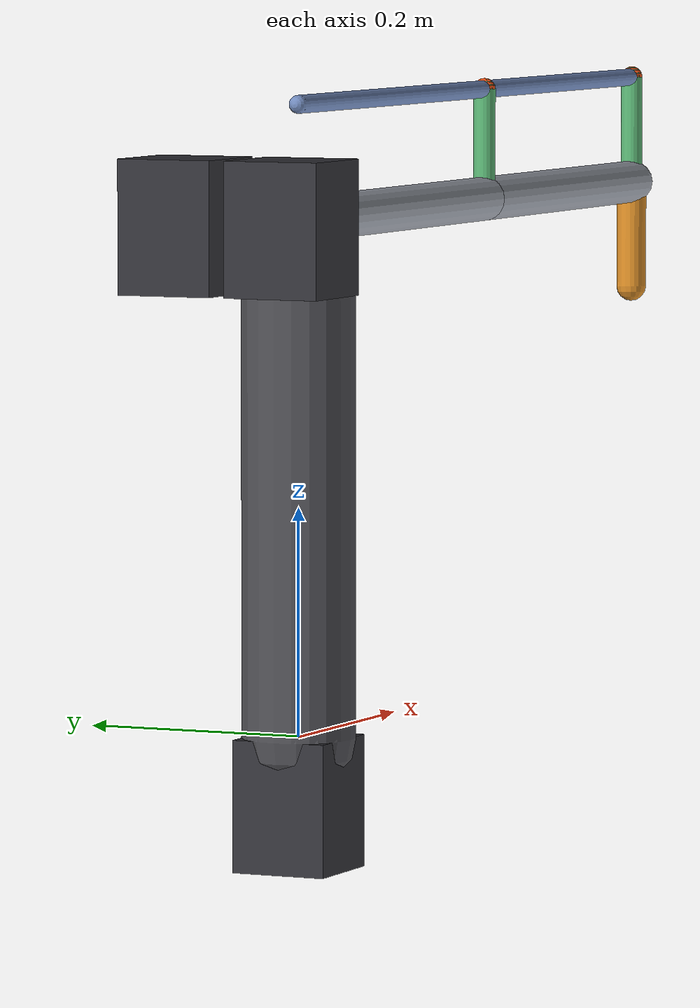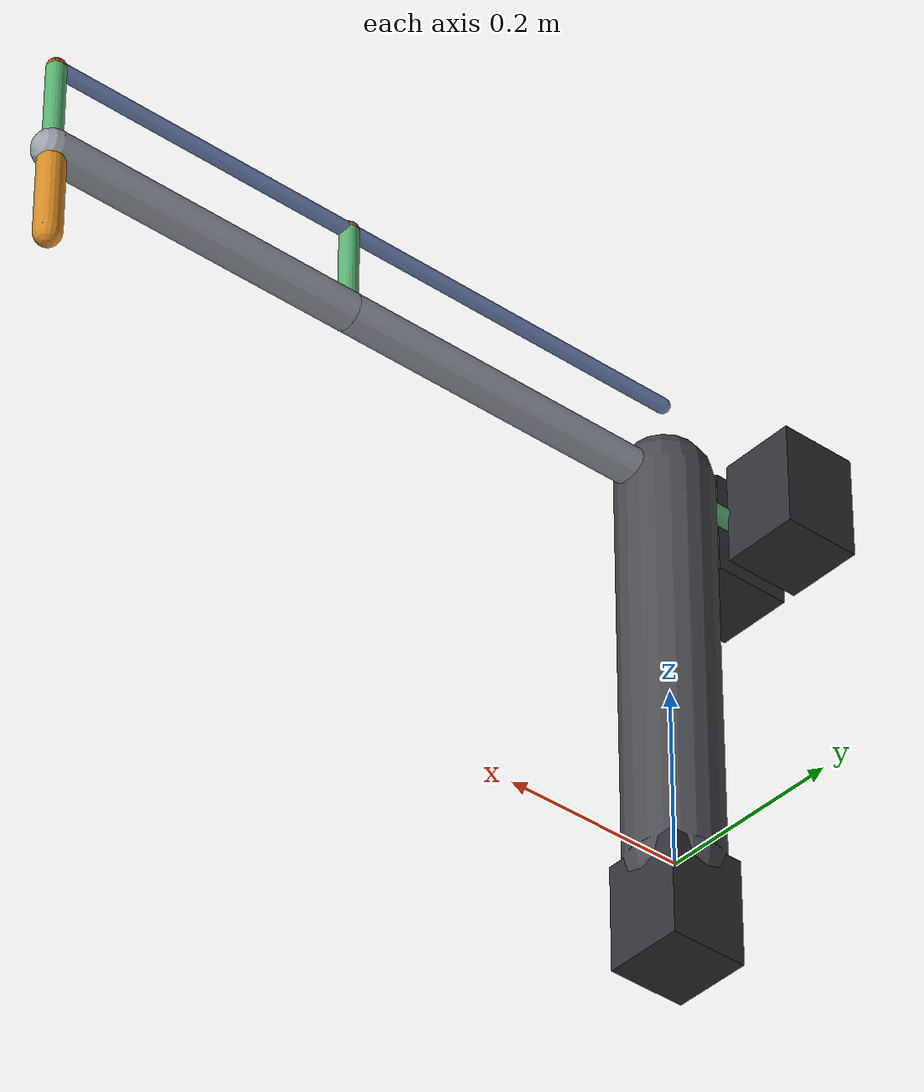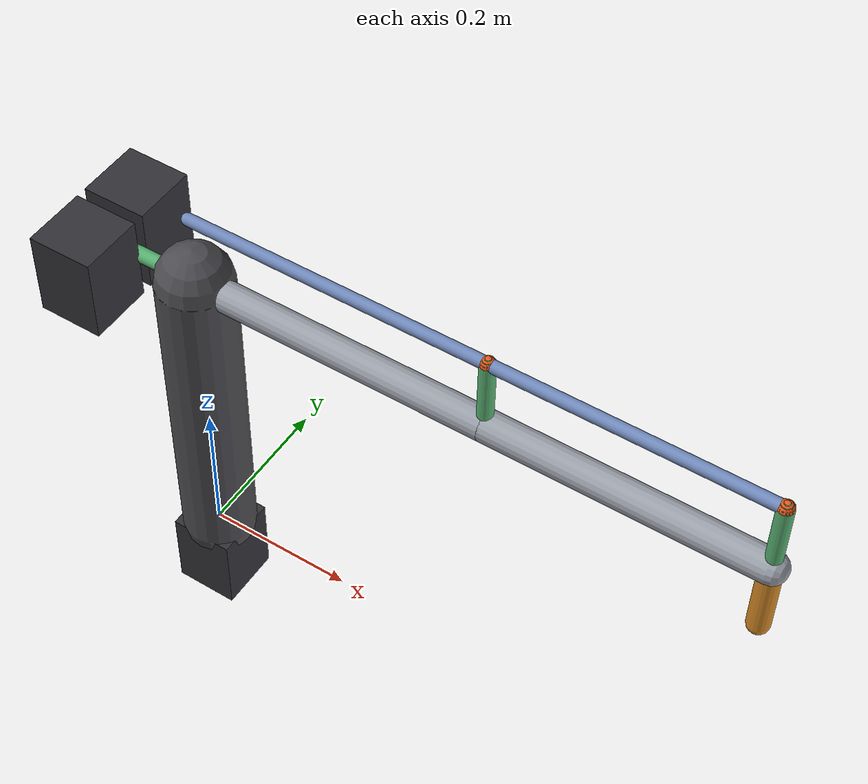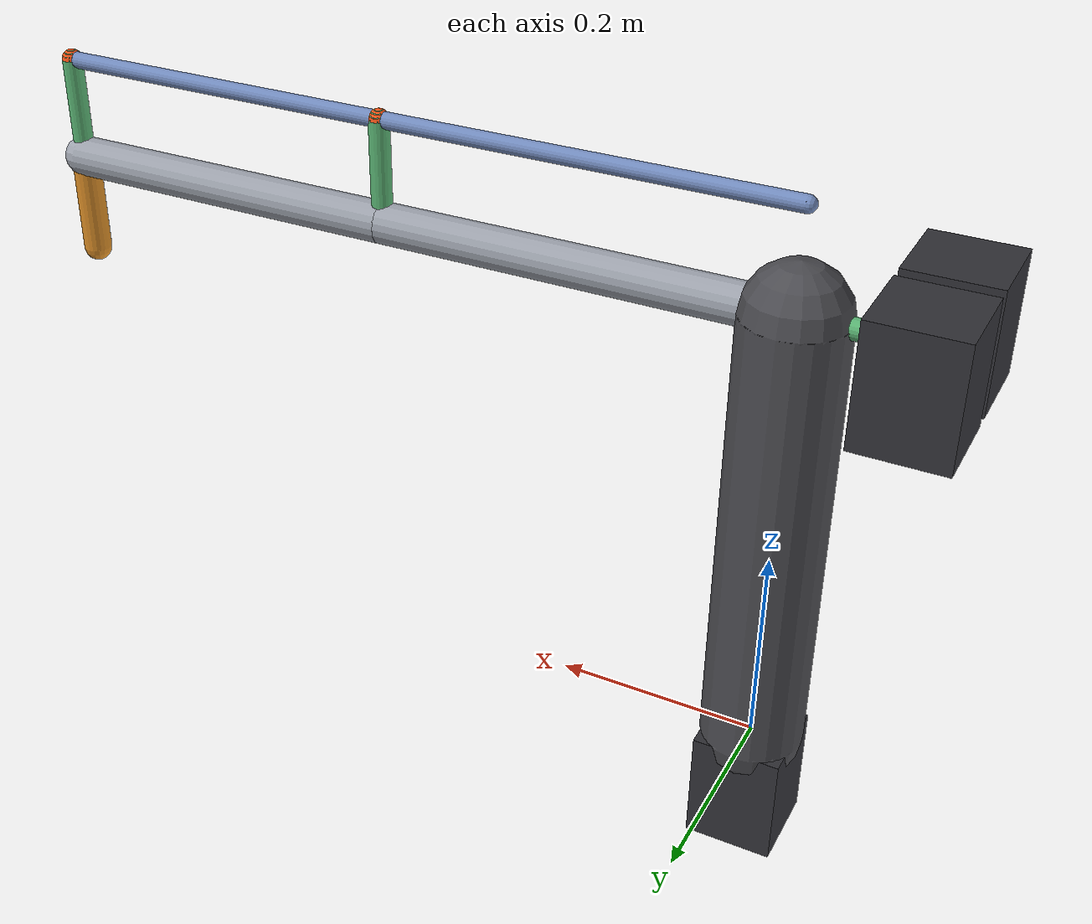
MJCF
<mujoco model="palletizer">
  <compiler angle="radian"/>
  <option timestep="0.001" gravity="0 0 -9.81" integrator="implicitfast"
          solver="Newton" iterations="200" tolerance="1e-14"/>

  <default>
    <geom type="capsule" density="2700" contype="0" conaffinity="0"
          size="0.020000" rgba="0.62 0.64 0.68 1"/>
    <joint type="hinge" axis="0 -1 0" damping="0.05"/>
    <site type="sphere" size="0.010" rgba="1 0.35 0.1 1"/>
    <default class="rod">
      <geom size="0.008" rgba="0.45 0.55 0.75 1"/>
    </default>
    <default class="level">
      <geom size="0.010" rgba="0.35 0.70 0.45 1"/>
    </default>
  </default>

  <worldbody>
    <geom name="column" type="capsule" fromto="0 0 0  0 0 0.450000" size="0.050000"
          rgba="0.30 0.30 0.32 1"/>
    <!-- yaw motor: grounded, does not rotate, contributes to no DOF -->
    <geom name="motor_yaw" type="box" size="0.043 0.043 0.058"
          pos="0 0 -0.058" mass="3.8" rgba="0.20 0.20 0.22 1"/>

    <body name="base" pos="0 0 0">
      <joint name="q0_yaw" type="hinge" axis="0 0 1" damping="0.10"
             armature="0.168750"/>
      <geom name="turret" type="capsule" fromto="0 0 0  0 0 0.450000" size="0.050000"
            rgba="0.40 0.42 0.46 1"/>
      <!-- both planar drive motors ride the rotating base (hard constraint 1) -->
      <geom name="motor_q1" type="box" size="0.043 0.043 0.058"
            pos="-0.120000 0.050 0.450000" mass="3.8" rgba="0.20 0.20 0.22 1"/>
      <geom name="motor_q2" type="box" size="0.043 0.043 0.058"
            pos="-0.120000 -0.050 0.450000" mass="3.8" rgba="0.20 0.20 0.22 1"/>

      <body name="upper_arm" pos="0 0 0.450000">
        <joint name="q1_upper_arm" armature="0.168750"/>
        <geom name="g_upper_arm" fromto="0 0 0  0.400000 0 0"/>
        <site name="shoulder" pos="0 0 0"/>

        <body name="forearm" pos="0.400000 0 0">
          <joint name="q2_forearm_rel"/>
          <geom name="g_forearm" fromto="0 0 0  0.350000 0 0"/>
          <geom name="g_drive_stub" class="level" fromto="0 0 0  -0.120000 0 0"/>
          <site name="cut_drive" pos="-0.120000 0 0"/>
          <site name="elbow" pos="0 0 0"/>

          <body name="tool_plate" pos="0.350000 0 0">
            <joint name="tool_plate"/>
            <geom name="g_plate_arm" class="level" fromto="0 0 0  0 0 0.100000"/>
            <geom name="g_gripper" size="0.014" fromto="0 0 0  0 0 -0.100000"
                  rgba="0.85 0.55 0.15 1"/>
            <site name="cut_level2" pos="0 0 0.100000"/>
            <site name="tcp" pos="0 0 -0.100000" size="0.012" rgba="0.15 0.85 0.35 1"/>
          </body>
        </body>

        <body name="elbow_yoke" pos="0.400000 0 0">
          <joint name="elbow_yoke"/>
          <geom name="g_yoke" class="level" fromto="0 0 0  0 0 0.100000"/>
          <site name="cut_level1" pos="0 0 0.100000"/>

          <body name="rod_b2" pos="0 0 0.100000">
            <joint name="rod_b2"/>
            <geom name="g_rod_b2" class="rod" fromto="0 0 0  0.350000 0 0"/>
            <site name="cut_level2_rod" pos="0.350000 0 0"/>
          </body>
        </body>
      </body>

      <body name="drive_lever" pos="0 0 0.450000">
        <joint name="drive_lever" armature="0.168750"/>
        <geom name="g_drive_lever" class="level" fromto="0 0 0  -0.120000 0 0"/>

        <body name="push_rod" pos="-0.120000 0 0">
          <joint name="push_rod"/>
          <geom name="g_push_rod" class="rod" fromto="0 0 0  0.400000 0 0"/>
          <site name="cut_drive_rod" pos="0.400000 0 0"/>
        </body>
      </body>

      <body name="rod_b1" pos="0 0 0.550000">
        <joint name="rod_b1"/>
        <geom name="g_rod_b1" class="rod" fromto="0 0 0  0.400000 0 0"/>
        <site name="cut_level1_rod" pos="0.400000 0 0"/>
      </body>
    </body>
  </worldbody>

  <equality>
    <connect name="L_drive"  site1="cut_drive_rod"  site2="cut_drive"  solref="0.002 1" solimp="0.999 0.9999 0.0001 0.5 2"/>
    <connect name="L_level1" site1="cut_level1_rod" site2="cut_level1" solref="0.002 1" solimp="0.999 0.9999 0.0001 0.5 2"/>
    <connect name="L_level2" site1="cut_level2_rod" site2="cut_level2" solref="0.002 1" solimp="0.999 0.9999 0.0001 0.5 2"/>
  </equality>

  <actuator>
    <position name="a_yaw"   joint="q0_yaw"       kp="2000" kv="120"/>
    <position name="a_q1"    joint="q1_upper_arm" kp="4000" kv="200"/>
    <position name="a_q2"    joint="drive_lever"  kp="4000" kv="200"/>
  </actuator>
</mujoco>
